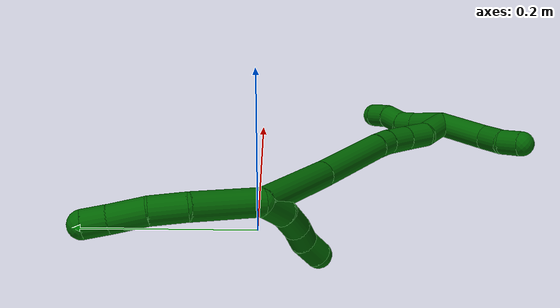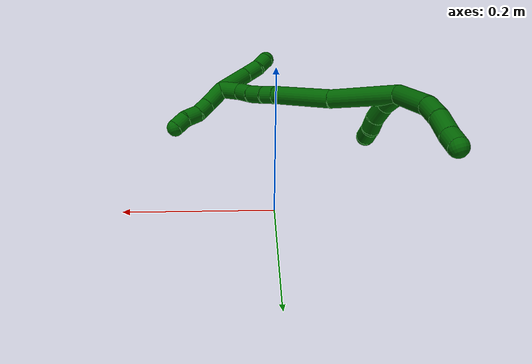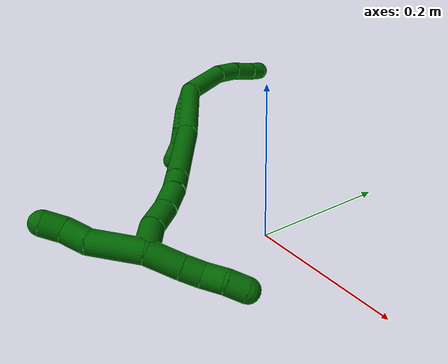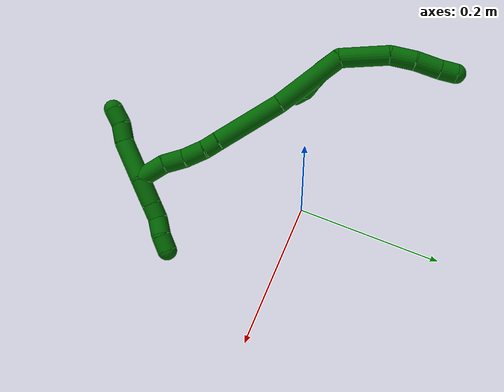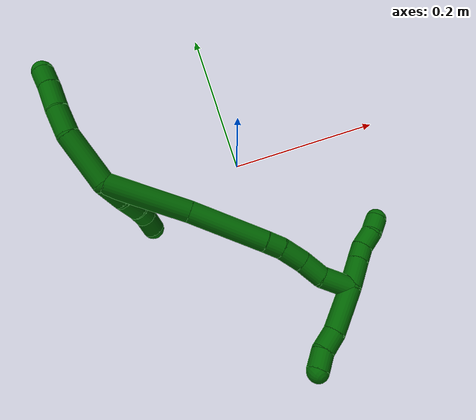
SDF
<sdf version="1.7">
 <world name="default">
  <model name="6">
   <static>0</static>
   <link name="6">
    <collision name="collision-cylinder-e_1_2_8">
     <pose>-0.004561 0.025413 -0.018605 -2.20274 -0.143813 0.282121</pose>
     <geometry><cylinder><radius>0.0125</radius><length>0.063649</length></cylinder></geometry>
     <surface>
      <friction><ode><mu>1.16</mu><mu2>1.16</mu2><slip1>0</slip1><slip2>0</slip2></ode></friction>
      <contact><ode><kp>1e+06</kp><kd>1</kd><max_vel>0</max_vel><min_depth>0.001</min_depth></ode></contact>
     </surface>
    </collision>
    <visual name="visual-cylinder-e_1_2_8">
     <pose>-0.004561 0.025413 -0.018605 -2.20274 -0.143813 0.282121</pose>
     <geometry><cylinder><radius>0.0125</radius><length>0.063649</length></cylinder></geometry>
     <material><ambient>0 0.392157 0.003922 1</ambient></material>
    </visual>
    <collision name="collision-cylinder-e_2_8_9">
     <pose>-0.007966 0.061987 -0.048716 -2.37143 0.071993 -0.177234</pose>
     <geometry><cylinder><radius>0.0125</radius><length>0.032142</length></cylinder></geometry>
     <surface>
      <friction><ode><mu>1.16</mu><mu2>1.16</mu2><slip1>0</slip1><slip2>0</slip2></ode></friction>
      <contact><ode><kp>1e+06</kp><kd>1</kd><max_vel>0</max_vel><min_depth>0.001</min_depth></ode></contact>
     </surface>
    </collision>
    <visual name="visual-cylinder-e_2_8_9">
     <pose>-0.007966 0.061987 -0.048716 -2.37143 0.071993 -0.177234</pose>
     <geometry><cylinder><radius>0.0125</radius><length>0.032142</length></cylinder></geometry>
     <material><ambient>0 0.392157 0.003922 1</ambient></material>
    </visual>
    <collision name="collision-cylinder-e_3_9_10">
     <pose>-0.004798 0.082462 -0.073481 -2.52918 0.123521 -0.386327</pose>
     <geometry><cylinder><radius>0.0125</radius><length>0.032656</length></cylinder></geometry>
     <surface>
      <friction><ode><mu>1.16</mu><mu2>1.16</mu2><slip1>0</slip1><slip2>0</slip2></ode></friction>
      <contact><ode><kp>1e+06</kp><kd>1</kd><max_vel>0</max_vel><min_depth>0.001</min_depth></ode></contact>
     </surface>
    </collision>
    <visual name="visual-cylinder-e_3_9_10">
     <pose>-0.004798 0.082462 -0.073481 -2.52918 0.123521 -0.386327</pose>
     <geometry><cylinder><radius>0.0125</radius><length>0.032656</length></cylinder></geometry>
     <material><ambient>0 0.392157 0.003922 1</ambient></material>
    </visual>
    <collision name="collision-cylinder-e_4_10_6">
     <pose>-0.002118 0.098522 -0.095117 -2.46374 0.062085 -0.175715</pose>
     <geometry><cylinder><radius>0.0125</radius><length>0.021553</length></cylinder></geometry>
     <surface>
      <friction><ode><mu>1.16</mu><mu2>1.16</mu2><slip1>0</slip1><slip2>0</slip2></ode></friction>
      <contact><ode><kp>1e+06</kp><kd>1</kd><max_vel>0</max_vel><min_depth>0.001</min_depth></ode></contact>
     </surface>
    </collision>
    <visual name="visual-cylinder-e_4_10_6">
     <pose>-0.002118 0.098522 -0.095117 -2.46374 0.062085 -0.175715</pose>
     <geometry><cylinder><radius>0.0125</radius><length>0.021553</length></cylinder></geometry>
     <material><ambient>0 0.392157 0.003922 1</ambient></material>
    </visual>
    <collision name="collision-cylinder-e_1_2_11">
     <pose>0.005295 -0.01396 -0.000181 1.58373 0.362487 0.367102</pose>
     <geometry><cylinder><radius>0.0125</radius><length>0.029862</length></cylinder></geometry>
     <surface>
      <friction><ode><mu>1.16</mu><mu2>1.16</mu2><slip1>0</slip1><slip2>0</slip2></ode></friction>
      <contact><ode><kp>1e+06</kp><kd>1</kd><max_vel>0</max_vel><min_depth>0.001</min_depth></ode></contact>
     </surface>
    </collision>
    <visual name="visual-cylinder-e_1_2_11">
     <pose>0.005295 -0.01396 -0.000181 1.58373 0.362487 0.367102</pose>
     <geometry><cylinder><radius>0.0125</radius><length>0.029862</length></cylinder></geometry>
     <material><ambient>0 0.392157 0.003922 1</ambient></material>
    </visual>
    <collision name="collision-cylinder-e_2_11_12">
     <pose>0.015218 -0.039994 -0.003746 1.8441 0.353598 0.462824</pose>
     <geometry><cylinder><radius>0.0125</radius><length>0.026736</length></cylinder></geometry>
     <surface>
      <friction><ode><mu>1.16</mu><mu2>1.16</mu2><slip1>0</slip1><slip2>0</slip2></ode></friction>
      <contact><ode><kp>1e+06</kp><kd>1</kd><max_vel>0</max_vel><min_depth>0.001</min_depth></ode></contact>
     </surface>
    </collision>
    <visual name="visual-cylinder-e_2_11_12">
     <pose>0.015218 -0.039994 -0.003746 1.8441 0.353598 0.462824</pose>
     <geometry><cylinder><radius>0.0125</radius><length>0.026736</length></cylinder></geometry>
     <material><ambient>0 0.392157 0.003922 1</ambient></material>
    </visual>
    <collision name="collision-cylinder-e_3_12_13">
     <pose>0.022101 -0.061265 -0.011122 1.9803 0.221211 0.335365</pose>
     <geometry><cylinder><radius>0.0125</radius><length>0.020548</length></cylinder></geometry>
     <surface>
      <friction><ode><mu>1.16</mu><mu2>1.16</mu2><slip1>0</slip1><slip2>0</slip2></ode></friction>
      <contact><ode><kp>1e+06</kp><kd>1</kd><max_vel>0</max_vel><min_depth>0.001</min_depth></ode></contact>
     </surface>
    </collision>
    <visual name="visual-cylinder-e_3_12_13">
     <pose>0.022101 -0.061265 -0.011122 1.9803 0.221211 0.335365</pose>
     <geometry><cylinder><radius>0.0125</radius><length>0.020548</length></cylinder></geometry>
     <material><ambient>0 0.392157 0.003922 1</ambient></material>
    </visual>
    <collision name="collision-cylinder-e_4_13_5">
     <pose>0.025698 -0.081715 -0.016558 1.69847 0.117751 0.133787</pose>
     <geometry><cylinder><radius>0.0125</radius><length>0.022854</length></cylinder></geometry>
     <surface>
      <friction><ode><mu>1.16</mu><mu2>1.16</mu2><slip1>0</slip1><slip2>0</slip2></ode></friction>
      <contact><ode><kp>1e+06</kp><kd>1</kd><max_vel>0</max_vel><min_depth>0.001</min_depth></ode></contact>
     </surface>
    </collision>
    <visual name="visual-cylinder-e_4_13_5">
     <pose>0.025698 -0.081715 -0.016558 1.69847 0.117751 0.133787</pose>
     <geometry><cylinder><radius>0.0125</radius><length>0.022854</length></cylinder></geometry>
     <material><ambient>0 0.392157 0.003922 1</ambient></material>
    </visual>
    <collision name="collision-cylinder-e_1_2_14">
     <pose>0.033216 -0.030126 0.017122 1.05398 0.764244 0.459429</pose>
     <geometry><cylinder><radius>0.0125</radius><length>0.096001</length></cylinder></geometry>
     <surface>
      <friction><ode><mu>1.16</mu><mu2>1.16</mu2><slip1>0</slip1><slip2>0</slip2></ode></friction>
      <contact><ode><kp>1e+06</kp><kd>1</kd><max_vel>0</max_vel><min_depth>0.001</min_depth></ode></contact>
     </surface>
    </collision>
    <visual name="visual-cylinder-e_1_2_14">
     <pose>0.033216 -0.030126 0.017122 1.05398 0.764244 0.459429</pose>
     <geometry><cylinder><radius>0.0125</radius><length>0.096001</length></cylinder></geometry>
     <material><ambient>0 0.392157 0.003922 1</ambient></material>
    </visual>
    <collision name="collision-cylinder-e_2_14_15">
     <pose>0.095818 -0.087972 0.055475 0.9172 0.699612 0.356396</pose>
     <geometry><cylinder><radius>0.0125</radius><length>0.091272</length></cylinder></geometry>
     <surface>
      <friction><ode><mu>1.16</mu><mu2>1.16</mu2><slip1>0</slip1><slip2>0</slip2></ode></friction>
      <contact><ode><kp>1e+06</kp><kd>1</kd><max_vel>0</max_vel><min_depth>0.001</min_depth></ode></contact>
     </surface>
    </collision>
    <visual name="visual-cylinder-e_2_14_15">
     <pose>0.095818 -0.087972 0.055475 0.9172 0.699612 0.356396</pose>
     <geometry><cylinder><radius>0.0125</radius><length>0.091272</length></cylinder></geometry>
     <material><ambient>0 0.392157 0.003922 1</ambient></material>
    </visual>
    <collision name="collision-cylinder-e_3_15_16">
     <pose>0.131641 -0.122338 0.081004 0.99663 0.682753 0.381923</pose>
     <geometry><cylinder><radius>0.0125</radius><length>0.020406</length></cylinder></geometry>
     <surface>
      <friction><ode><mu>1.16</mu><mu2>1.16</mu2><slip1>0</slip1><slip2>0</slip2></ode></friction>
      <contact><ode><kp>1e+06</kp><kd>1</kd><max_vel>0</max_vel><min_depth>0.001</min_depth></ode></contact>
     </surface>
    </collision>
    <visual name="visual-cylinder-e_3_15_16">
     <pose>0.131641 -0.122338 0.081004 0.99663 0.682753 0.381923</pose>
     <geometry><cylinder><radius>0.0125</radius><length>0.020406</length></cylinder></geometry>
     <material><ambient>0 0.392157 0.003922 1</ambient></material>
    </visual>
    <collision name="collision-cylinder-e_4_16_17">
     <pose>0.14509 -0.139417 0.09181 1.01313 0.518249 0.292075</pose>
     <geometry><cylinder><radius>0.0125</radius><length>0.028307</length></cylinder></geometry>
     <surface>
      <friction><ode><mu>1.16</mu><mu2>1.16</mu2><slip1>0</slip1><slip2>0</slip2></ode></friction>
      <contact><ode><kp>1e+06</kp><kd>1</kd><max_vel>0</max_vel><min_depth>0.001</min_depth></ode></contact>
     </surface>
    </collision>
    <visual name="visual-cylinder-e_4_16_17">
     <pose>0.14509 -0.139417 0.09181 1.01313 0.518249 0.292075</pose>
     <geometry><cylinder><radius>0.0125</radius><length>0.028307</length></cylinder></geometry>
     <material><ambient>0 0.392157 0.003922 1</ambient></material>
    </visual>
    <collision name="collision-cylinder-e_5_17_18">
     <pose>0.157581 -0.160342 0.106041 0.936248 0.398134 0.203299</pose>
     <geometry><cylinder><radius>0.0125</radius><length>0.02827</length></cylinder></geometry>
     <surface>
      <friction><ode><mu>1.16</mu><mu2>1.16</mu2><slip1>0</slip1><slip2>0</slip2></ode></friction>
      <contact><ode><kp>1e+06</kp><kd>1</kd><max_vel>0</max_vel><min_depth>0.001</min_depth></ode></contact>
     </surface>
    </collision>
    <visual name="visual-cylinder-e_5_17_18">
     <pose>0.157581 -0.160342 0.106041 0.936248 0.398134 0.203299</pose>
     <geometry><cylinder><radius>0.0125</radius><length>0.02827</length></cylinder></geometry>
     <material><ambient>0 0.392157 0.003922 1</ambient></material>
    </visual>
    <collision name="collision-cylinder-e_6_18_1">
     <pose>0.174796 -0.1811 0.122501 0.865661 0.716348 0.342521</pose>
     <geometry><cylinder><radius>0.0125</radius><length>0.035744</length></cylinder></geometry>
     <surface>
      <friction><ode><mu>1.16</mu><mu2>1.16</mu2><slip1>0</slip1><slip2>0</slip2></ode></friction>
      <contact><ode><kp>1e+06</kp><kd>1</kd><max_vel>0</max_vel><min_depth>0.001</min_depth></ode></contact>
     </surface>
    </collision>
    <visual name="visual-cylinder-e_6_18_1">
     <pose>0.174796 -0.1811 0.122501 0.865661 0.716348 0.342521</pose>
     <geometry><cylinder><radius>0.0125</radius><length>0.035744</length></cylinder></geometry>
     <material><ambient>0 0.392157 0.003922 1</ambient></material>
    </visual>
    <collision name="collision-cylinder-e_1_1_19">
     <pose>0.16457 -0.201662 0.14258 0.737183 -0.961712 -0.397681</pose>
     <geometry><cylinder><radius>0.0125</radius><length>0.053553</length></cylinder></geometry>
     <surface>
      <friction><ode><mu>1.16</mu><mu2>1.16</mu2><slip1>0</slip1><slip2>0</slip2></ode></friction>
      <contact><ode><kp>1e+06</kp><kd>1</kd><max_vel>0</max_vel><min_depth>0.001</min_depth></ode></contact>
     </surface>
    </collision>
    <visual name="visual-cylinder-e_1_1_19">
     <pose>0.16457 -0.201662 0.14258 0.737183 -0.961712 -0.397681</pose>
     <geometry><cylinder><radius>0.0125</radius><length>0.053553</length></cylinder></geometry>
     <material><ambient>0 0.392157 0.003922 1</ambient></material>
    </visual>
    <collision name="collision-cylinder-e_2_19_20">
     <pose>0.131221 -0.213399 0.15856 0.300757 -1.16774 -0.199561</pose>
     <geometry><cylinder><radius>0.0125</radius><length>0.024761</length></cylinder></geometry>
     <surface>
      <friction><ode><mu>1.16</mu><mu2>1.16</mu2><slip1>0</slip1><slip2>0</slip2></ode></friction>
      <contact><ode><kp>1e+06</kp><kd>1</kd><max_vel>0</max_vel><min_depth>0.001</min_depth></ode></contact>
     </surface>
    </collision>
    <visual name="visual-cylinder-e_2_19_20">
     <pose>0.131221 -0.213399 0.15856 0.300757 -1.16774 -0.199561</pose>
     <geometry><cylinder><radius>0.0125</radius><length>0.024761</length></cylinder></geometry>
     <material><ambient>0 0.392157 0.003922 1</ambient></material>
    </visual>
    <collision name="collision-cylinder-e_3_20_4">
     <pose>0.111426 -0.217767 0.169388 0.442001 -0.887153 -0.212702</pose>
     <geometry><cylinder><radius>0.0125</radius><length>0.021686</length></cylinder></geometry>
     <surface>
      <friction><ode><mu>1.16</mu><mu2>1.16</mu2><slip1>0</slip1><slip2>0</slip2></ode></friction>
      <contact><ode><kp>1e+06</kp><kd>1</kd><max_vel>0</max_vel><min_depth>0.001</min_depth></ode></contact>
     </surface>
    </collision>
    <visual name="visual-cylinder-e_3_20_4">
     <pose>0.111426 -0.217767 0.169388 0.442001 -0.887153 -0.212702</pose>
     <geometry><cylinder><radius>0.0125</radius><length>0.021686</length></cylinder></geometry>
     <material><ambient>0 0.392157 0.003922 1</ambient></material>
    </visual>
    <collision name="collision-cylinder-e_1_1_21">
     <pose>0.200722 -0.18861 0.12079 -2.88376 0.920017 -2.62978</pose>
     <geometry><cylinder><radius>0.0125</radius><length>0.035672</length></cylinder></geometry>
     <surface>
      <friction><ode><mu>1.16</mu><mu2>1.16</mu2><slip1>0</slip1><slip2>0</slip2></ode></friction>
      <contact><ode><kp>1e+06</kp><kd>1</kd><max_vel>0</max_vel><min_depth>0.001</min_depth></ode></contact>
     </surface>
    </collision>
    <visual name="visual-cylinder-e_1_1_21">
     <pose>0.200722 -0.18861 0.12079 -2.88376 0.920017 -2.62978</pose>
     <geometry><cylinder><radius>0.0125</radius><length>0.035672</length></cylinder></geometry>
     <material><ambient>0 0.392157 0.003922 1</ambient></material>
    </visual>
    <collision name="collision-cylinder-e_2_21_22">
     <pose>0.22325 -0.183688 0.104591 -2.78129 0.935634 -2.44963</pose>
     <geometry><cylinder><radius>0.0125</radius><length>0.020714</length></cylinder></geometry>
     <surface>
      <friction><ode><mu>1.16</mu><mu2>1.16</mu2><slip1>0</slip1><slip2>0</slip2></ode></friction>
      <contact><ode><kp>1e+06</kp><kd>1</kd><max_vel>0</max_vel><min_depth>0.001</min_depth></ode></contact>
     </surface>
    </collision>
    <visual name="visual-cylinder-e_2_21_22">
     <pose>0.22325 -0.183688 0.104591 -2.78129 0.935634 -2.44963</pose>
     <geometry><cylinder><radius>0.0125</radius><length>0.020714</length></cylinder></geometry>
     <material><ambient>0 0.392157 0.003922 1</ambient></material>
    </visual>
    <collision name="collision-cylinder-e_3_22_23">
     <pose>0.242012 -0.178221 0.095797 -2.31571 1.16414 -1.9669</pose>
     <geometry><cylinder><radius>0.0125</radius><length>0.022701</length></cylinder></geometry>
     <surface>
      <friction><ode><mu>1.16</mu><mu2>1.16</mu2><slip1>0</slip1><slip2>0</slip2></ode></friction>
      <contact><ode><kp>1e+06</kp><kd>1</kd><max_vel>0</max_vel><min_depth>0.001</min_depth></ode></contact>
     </surface>
    </collision>
    <visual name="visual-cylinder-e_3_22_23">
     <pose>0.242012 -0.178221 0.095797 -2.31571 1.16414 -1.9669</pose>
     <geometry><cylinder><radius>0.0125</radius><length>0.022701</length></cylinder></geometry>
     <material><ambient>0 0.392157 0.003922 1</ambient></material>
    </visual>
    <collision name="collision-cylinder-e_4_23_3">
     <pose>0.261061 -0.173031 0.087151 -2.81625 0.969774 -2.53761</pose>
     <geometry><cylinder><radius>0.0125</radius><length>0.020913</length></cylinder></geometry>
     <surface>
      <friction><ode><mu>1.16</mu><mu2>1.16</mu2><slip1>0</slip1><slip2>0</slip2></ode></friction>
      <contact><ode><kp>1e+06</kp><kd>1</kd><max_vel>0</max_vel><min_depth>0.001</min_depth></ode></contact>
     </surface>
    </collision>
    <visual name="visual-cylinder-e_4_23_3">
     <pose>0.261061 -0.173031 0.087151 -2.81625 0.969774 -2.53761</pose>
     <geometry><cylinder><radius>0.0125</radius><length>0.020913</length></cylinder></geometry>
     <material><ambient>0 0.392157 0.003922 1</ambient></material>
    </visual>
    <collision name="collision-sphere-3">
     <pose>0.269685 -0.171141 0.081548 0 -0 0</pose>
     <geometry><sphere><radius>0.0125</radius></sphere></geometry>
     <surface>
      <friction><ode><mu>1.16</mu><mu2>1.16</mu2><slip1>0</slip1><slip2>0</slip2></ode></friction>
      <contact><ode><kp>1e+06</kp><kd>1</kd><max_vel>0</max_vel><min_depth>0.001</min_depth></ode></contact>
     </surface>
    </collision>
    <visual name="visual-sphere-3">
     <pose>0.269685 -0.171141 0.081548 0 -0 0</pose>
     <geometry><sphere><radius>0.0125</radius></sphere></geometry>
     <material><ambient>0 0.392157 0.003922 1</ambient></material>
    </visual>
    <collision name="collision-sphere-23">
     <pose>0.252437 -0.174921 0.092754 0 -0 0</pose>
     <geometry><sphere><radius>0.0125</radius></sphere></geometry>
     <surface>
      <friction><ode><mu>1.16</mu><mu2>1.16</mu2><slip1>0</slip1><slip2>0</slip2></ode></friction>
      <contact><ode><kp>1e+06</kp><kd>1</kd><max_vel>0</max_vel><min_depth>0.001</min_depth></ode></contact>
     </surface>
    </collision>
    <visual name="visual-sphere-23">
     <pose>0.252437 -0.174921 0.092754 0 -0 0</pose>
     <geometry><sphere><radius>0.0125</radius></sphere></geometry>
     <material><ambient>0 0.392157 0.003922 1</ambient></material>
    </visual>
    <collision name="collision-sphere-22">
     <pose>0.231587 -0.181522 0.098841 0 -0 0</pose>
     <geometry><sphere><radius>0.0125</radius></sphere></geometry>
     <surface>
      <friction><ode><mu>1.16</mu><mu2>1.16</mu2><slip1>0</slip1><slip2>0</slip2></ode></friction>
      <contact><ode><kp>1e+06</kp><kd>1</kd><max_vel>0</max_vel><min_depth>0.001</min_depth></ode></contact>
     </surface>
    </collision>
    <visual name="visual-sphere-22">
     <pose>0.231587 -0.181522 0.098841 0 -0 0</pose>
     <geometry><sphere><radius>0.0125</radius></sphere></geometry>
     <material><ambient>0 0.392157 0.003922 1</ambient></material>
    </visual>
    <collision name="collision-sphere-21">
     <pose>0.214913 -0.185855 0.110342 0 -0 0</pose>
     <geometry><sphere><radius>0.0125</radius></sphere></geometry>
     <surface>
      <friction><ode><mu>1.16</mu><mu2>1.16</mu2><slip1>0</slip1><slip2>0</slip2></ode></friction>
      <contact><ode><kp>1e+06</kp><kd>1</kd><max_vel>0</max_vel><min_depth>0.001</min_depth></ode></contact>
     </surface>
    </collision>
    <visual name="visual-sphere-21">
     <pose>0.214913 -0.185855 0.110342 0 -0 0</pose>
     <geometry><sphere><radius>0.0125</radius></sphere></geometry>
     <material><ambient>0 0.392157 0.003922 1</ambient></material>
    </visual>
    <collision name="collision-sphere-4">
     <pose>0.10302 -0.220696 0.175578 0 -0 0</pose>
     <geometry><sphere><radius>0.0125</radius></sphere></geometry>
     <surface>
      <friction><ode><mu>1.16</mu><mu2>1.16</mu2><slip1>0</slip1><slip2>0</slip2></ode></friction>
      <contact><ode><kp>1e+06</kp><kd>1</kd><max_vel>0</max_vel><min_depth>0.001</min_depth></ode></contact>
     </surface>
    </collision>
    <visual name="visual-sphere-4">
     <pose>0.10302 -0.220696 0.175578 0 -0 0</pose>
     <geometry><sphere><radius>0.0125</radius></sphere></geometry>
     <material><ambient>0 0.392157 0.003922 1</ambient></material>
    </visual>
    <collision name="collision-sphere-20">
     <pose>0.119832 -0.214837 0.163198 0 -0 0</pose>
     <geometry><sphere><radius>0.0125</radius></sphere></geometry>
     <surface>
      <friction><ode><mu>1.16</mu><mu2>1.16</mu2><slip1>0</slip1><slip2>0</slip2></ode></friction>
      <contact><ode><kp>1e+06</kp><kd>1</kd><max_vel>0</max_vel><min_depth>0.001</min_depth></ode></contact>
     </surface>
    </collision>
    <visual name="visual-sphere-20">
     <pose>0.119832 -0.214837 0.163198 0 -0 0</pose>
     <geometry><sphere><radius>0.0125</radius></sphere></geometry>
     <material><ambient>0 0.392157 0.003922 1</ambient></material>
    </visual>
    <collision name="collision-sphere-11">
     <pose>0.010589 -0.027919 -0.000361 0 -0 0</pose>
     <geometry><sphere><radius>0.0125</radius></sphere></geometry>
     <surface>
      <friction><ode><mu>1.16</mu><mu2>1.16</mu2><slip1>0</slip1><slip2>0</slip2></ode></friction>
      <contact><ode><kp>1e+06</kp><kd>1</kd><max_vel>0</max_vel><min_depth>0.001</min_depth></ode></contact>
     </surface>
    </collision>
    <visual name="visual-sphere-11">
     <pose>0.010589 -0.027919 -0.000361 0 -0 0</pose>
     <geometry><sphere><radius>0.0125</radius></sphere></geometry>
     <material><ambient>0 0.392157 0.003922 1</ambient></material>
    </visual>
    <collision name="collision-sphere-6">
     <pose>-0.001449 0.105267 -0.103495 0 -0 0</pose>
     <geometry><sphere><radius>0.0125</radius></sphere></geometry>
     <surface>
      <friction><ode><mu>1.16</mu><mu2>1.16</mu2><slip1>0</slip1><slip2>0</slip2></ode></friction>
      <contact><ode><kp>1e+06</kp><kd>1</kd><max_vel>0</max_vel><min_depth>0.001</min_depth></ode></contact>
     </surface>
    </collision>
    <visual name="visual-sphere-6">
     <pose>-0.001449 0.105267 -0.103495 0 -0 0</pose>
     <geometry><sphere><radius>0.0125</radius></sphere></geometry>
     <material><ambient>0 0.392157 0.003922 1</ambient></material>
    </visual>
    <collision name="collision-sphere-10">
     <pose>-0.002786 0.091777 -0.08674 0 -0 0</pose>
     <geometry><sphere><radius>0.0125</radius></sphere></geometry>
     <surface>
      <friction><ode><mu>1.16</mu><mu2>1.16</mu2><slip1>0</slip1><slip2>0</slip2></ode></friction>
      <contact><ode><kp>1e+06</kp><kd>1</kd><max_vel>0</max_vel><min_depth>0.001</min_depth></ode></contact>
     </surface>
    </collision>
    <visual name="visual-sphere-10">
     <pose>-0.002786 0.091777 -0.08674 0 -0 0</pose>
     <geometry><sphere><radius>0.0125</radius></sphere></geometry>
     <material><ambient>0 0.392157 0.003922 1</ambient></material>
    </visual>
    <collision name="collision-sphere-9">
     <pose>-0.00681 0.073148 -0.060222 0 -0 0</pose>
     <geometry><sphere><radius>0.0125</radius></sphere></geometry>
     <surface>
      <friction><ode><mu>1.16</mu><mu2>1.16</mu2><slip1>0</slip1><slip2>0</slip2></ode></friction>
      <contact><ode><kp>1e+06</kp><kd>1</kd><max_vel>0</max_vel><min_depth>0.001</min_depth></ode></contact>
     </surface>
    </collision>
    <visual name="visual-sphere-9">
     <pose>-0.00681 0.073148 -0.060222 0 -0 0</pose>
     <geometry><sphere><radius>0.0125</radius></sphere></geometry>
     <material><ambient>0 0.392157 0.003922 1</ambient></material>
    </visual>
    <collision name="collision-sphere-2">
     <geometry><sphere><radius>0.0125</radius></sphere></geometry>
     <surface>
      <friction><ode><mu>1.16</mu><mu2>1.16</mu2><slip1>0</slip1><slip2>0</slip2></ode></friction>
      <contact><ode><kp>1e+06</kp><kd>1</kd><max_vel>0</max_vel><min_depth>0.001</min_depth></ode></contact>
     </surface>
    </collision>
    <visual name="visual-sphere-2">
     <geometry><sphere><radius>0.0125</radius></sphere></geometry>
     <material><ambient>0 0.392157 0.003922 1</ambient></material>
    </visual>
    <collision name="collision-sphere-19">
     <pose>0.142609 -0.21196 0.153921 0 -0 0</pose>
     <geometry><sphere><radius>0.0125</radius></sphere></geometry>
     <surface>
      <friction><ode><mu>1.16</mu><mu2>1.16</mu2><slip1>0</slip1><slip2>0</slip2></ode></friction>
      <contact><ode><kp>1e+06</kp><kd>1</kd><max_vel>0</max_vel><min_depth>0.001</min_depth></ode></contact>
     </surface>
    </collision>
    <visual name="visual-sphere-19">
     <pose>0.142609 -0.21196 0.153921 0 -0 0</pose>
     <geometry><sphere><radius>0.0125</radius></sphere></geometry>
     <material><ambient>0 0.392157 0.003922 1</ambient></material>
    </visual>
    <collision name="collision-sphere-8">
     <pose>-0.009122 0.050827 -0.03721 0 -0 0</pose>
     <geometry><sphere><radius>0.0125</radius></sphere></geometry>
     <surface>
      <friction><ode><mu>1.16</mu><mu2>1.16</mu2><slip1>0</slip1><slip2>0</slip2></ode></friction>
      <contact><ode><kp>1e+06</kp><kd>1</kd><max_vel>0</max_vel><min_depth>0.001</min_depth></ode></contact>
     </surface>
    </collision>
    <visual name="visual-sphere-8">
     <pose>-0.009122 0.050827 -0.03721 0 -0 0</pose>
     <geometry><sphere><radius>0.0125</radius></sphere></geometry>
     <material><ambient>0 0.392157 0.003922 1</ambient></material>
    </visual>
    <collision name="collision-sphere-12">
     <pose>0.019847 -0.05207 -0.007131 0 -0 0</pose>
     <geometry><sphere><radius>0.0125</radius></sphere></geometry>
     <surface>
      <friction><ode><mu>1.16</mu><mu2>1.16</mu2><slip1>0</slip1><slip2>0</slip2></ode></friction>
      <contact><ode><kp>1e+06</kp><kd>1</kd><max_vel>0</max_vel><min_depth>0.001</min_depth></ode></contact>
     </surface>
    </collision>
    <visual name="visual-sphere-12">
     <pose>0.019847 -0.05207 -0.007131 0 -0 0</pose>
     <geometry><sphere><radius>0.0125</radius></sphere></geometry>
     <material><ambient>0 0.392157 0.003922 1</ambient></material>
    </visual>
    <collision name="collision-sphere-13">
     <pose>0.024355 -0.07046 -0.015113 0 -0 0</pose>
     <geometry><sphere><radius>0.0125</radius></sphere></geometry>
     <surface>
      <friction><ode><mu>1.16</mu><mu2>1.16</mu2><slip1>0</slip1><slip2>0</slip2></ode></friction>
      <contact><ode><kp>1e+06</kp><kd>1</kd><max_vel>0</max_vel><min_depth>0.001</min_depth></ode></contact>
     </surface>
    </collision>
    <visual name="visual-sphere-13">
     <pose>0.024355 -0.07046 -0.015113 0 -0 0</pose>
     <geometry><sphere><radius>0.0125</radius></sphere></geometry>
     <material><ambient>0 0.392157 0.003922 1</ambient></material>
    </visual>
    <collision name="collision-sphere-5">
     <pose>0.02704 -0.092971 -0.018003 0 -0 0</pose>
     <geometry><sphere><radius>0.0125</radius></sphere></geometry>
     <surface>
      <friction><ode><mu>1.16</mu><mu2>1.16</mu2><slip1>0</slip1><slip2>0</slip2></ode></friction>
      <contact><ode><kp>1e+06</kp><kd>1</kd><max_vel>0</max_vel><min_depth>0.001</min_depth></ode></contact>
     </surface>
    </collision>
    <visual name="visual-sphere-5">
     <pose>0.02704 -0.092971 -0.018003 0 -0 0</pose>
     <geometry><sphere><radius>0.0125</radius></sphere></geometry>
     <material><ambient>0 0.392157 0.003922 1</ambient></material>
    </visual>
    <collision name="collision-sphere-14">
     <pose>0.066432 -0.060252 0.034244 0 -0 0</pose>
     <geometry><sphere><radius>0.0125</radius></sphere></geometry>
     <surface>
      <friction><ode><mu>1.16</mu><mu2>1.16</mu2><slip1>0</slip1><slip2>0</slip2></ode></friction>
      <contact><ode><kp>1e+06</kp><kd>1</kd><max_vel>0</max_vel><min_depth>0.001</min_depth></ode></contact>
     </surface>
    </collision>
    <visual name="visual-sphere-14">
     <pose>0.066432 -0.060252 0.034244 0 -0 0</pose>
     <geometry><sphere><radius>0.0125</radius></sphere></geometry>
     <material><ambient>0 0.392157 0.003922 1</ambient></material>
    </visual>
    <collision name="collision-sphere-15">
     <pose>0.125204 -0.115691 0.076705 0 -0 0</pose>
     <geometry><sphere><radius>0.0125</radius></sphere></geometry>
     <surface>
      <friction><ode><mu>1.16</mu><mu2>1.16</mu2><slip1>0</slip1><slip2>0</slip2></ode></friction>
      <contact><ode><kp>1e+06</kp><kd>1</kd><max_vel>0</max_vel><min_depth>0.001</min_depth></ode></contact>
     </surface>
    </collision>
    <visual name="visual-sphere-15">
     <pose>0.125204 -0.115691 0.076705 0 -0 0</pose>
     <geometry><sphere><radius>0.0125</radius></sphere></geometry>
     <material><ambient>0 0.392157 0.003922 1</ambient></material>
    </visual>
    <collision name="collision-sphere-16">
     <pose>0.138078 -0.128984 0.085304 0 -0 0</pose>
     <geometry><sphere><radius>0.0125</radius></sphere></geometry>
     <surface>
      <friction><ode><mu>1.16</mu><mu2>1.16</mu2><slip1>0</slip1><slip2>0</slip2></ode></friction>
      <contact><ode><kp>1e+06</kp><kd>1</kd><max_vel>0</max_vel><min_depth>0.001</min_depth></ode></contact>
     </surface>
    </collision>
    <visual name="visual-sphere-16">
     <pose>0.138078 -0.128984 0.085304 0 -0 0</pose>
     <geometry><sphere><radius>0.0125</radius></sphere></geometry>
     <material><ambient>0 0.392157 0.003922 1</ambient></material>
    </visual>
    <collision name="collision-sphere-17">
     <pose>0.152101 -0.149849 0.098317 0 -0 0</pose>
     <geometry><sphere><radius>0.0125</radius></sphere></geometry>
     <surface>
      <friction><ode><mu>1.16</mu><mu2>1.16</mu2><slip1>0</slip1><slip2>0</slip2></ode></friction>
      <contact><ode><kp>1e+06</kp><kd>1</kd><max_vel>0</max_vel><min_depth>0.001</min_depth></ode></contact>
     </surface>
    </collision>
    <visual name="visual-sphere-17">
     <pose>0.152101 -0.149849 0.098317 0 -0 0</pose>
     <geometry><sphere><radius>0.0125</radius></sphere></geometry>
     <material><ambient>0 0.392157 0.003922 1</ambient></material>
    </visual>
    <collision name="collision-sphere-18">
     <pose>0.163061 -0.170835 0.113765 0 -0 0</pose>
     <geometry><sphere><radius>0.0125</radius></sphere></geometry>
     <surface>
      <friction><ode><mu>1.16</mu><mu2>1.16</mu2><slip1>0</slip1><slip2>0</slip2></ode></friction>
      <contact><ode><kp>1e+06</kp><kd>1</kd><max_vel>0</max_vel><min_depth>0.001</min_depth></ode></contact>
     </surface>
    </collision>
    <visual name="visual-sphere-18">
     <pose>0.163061 -0.170835 0.113765 0 -0 0</pose>
     <geometry><sphere><radius>0.0125</radius></sphere></geometry>
     <material><ambient>0 0.392157 0.003922 1</ambient></material>
    </visual>
    <collision name="collision-sphere-1">
     <pose>0.186532 -0.191365 0.131238 0 -0 0</pose>
     <geometry><sphere><radius>0.0125</radius></sphere></geometry>
     <surface>
      <friction><ode><mu>1.16</mu><mu2>1.16</mu2><slip1>0</slip1><slip2>0</slip2></ode></friction>
      <contact><ode><kp>1e+06</kp><kd>1</kd><max_vel>0</max_vel><min_depth>0.001</min_depth></ode></contact>
     </surface>
    </collision>
    <visual name="visual-sphere-1">
     <pose>0.186532 -0.191365 0.131238 0 -0 0</pose>
     <geometry><sphere><radius>0.0125</radius></sphere></geometry>
     <material><ambient>0 0.392157 0.003922 1</ambient></material>
    </visual>
    <inertial>
     <pose>0.090006 -0.084747 0.048174 0 -0 0</pose>
     <mass>0.75</mass>
     <inertia>
      <ixx>0.000216</ixx>
      <ixy>0</ixy>
      <ixz>0</ixz>
      <iyy>0.000151</iyy>
      <iyz>0</iyz>
      <izz>-1.1e-05</izz>
     </inertia>
    </inertial>
   </link>
   <pose>-0.152341 -0.011505 0.15917 0.781691 0.136645 0.214304</pose>
  </model>
 </world>
</sdf>
